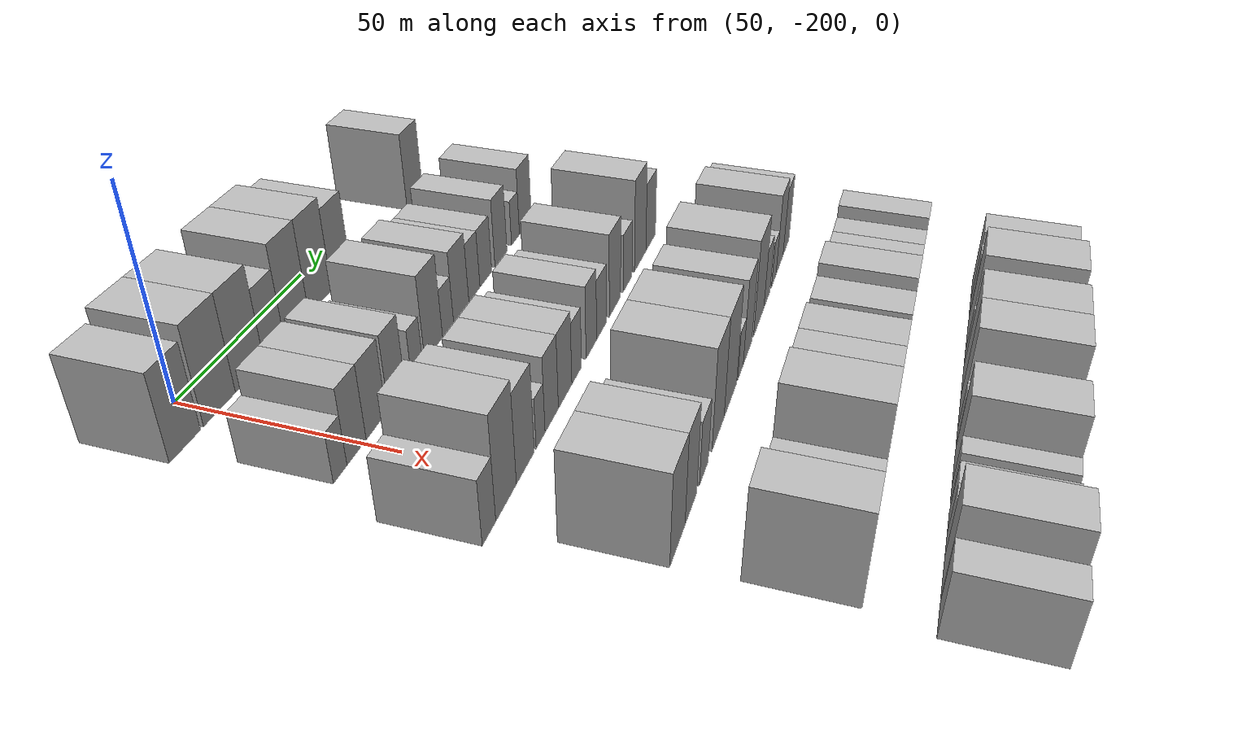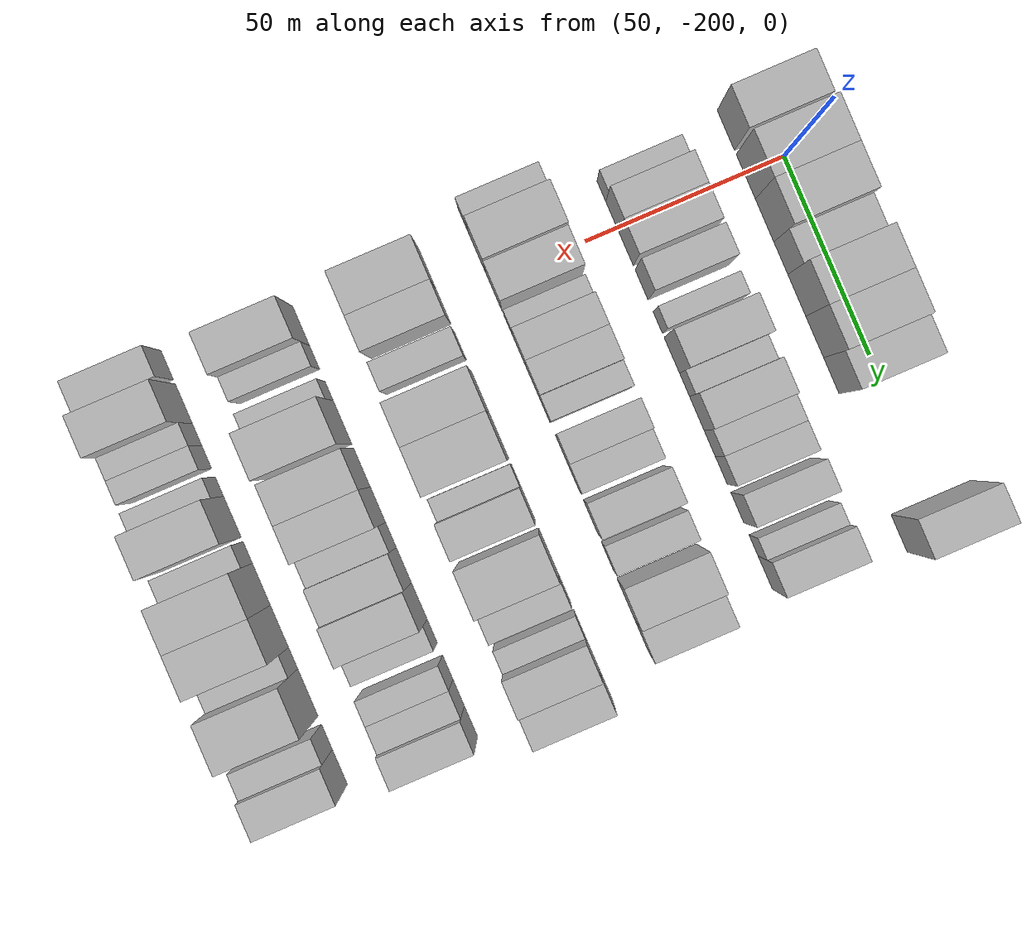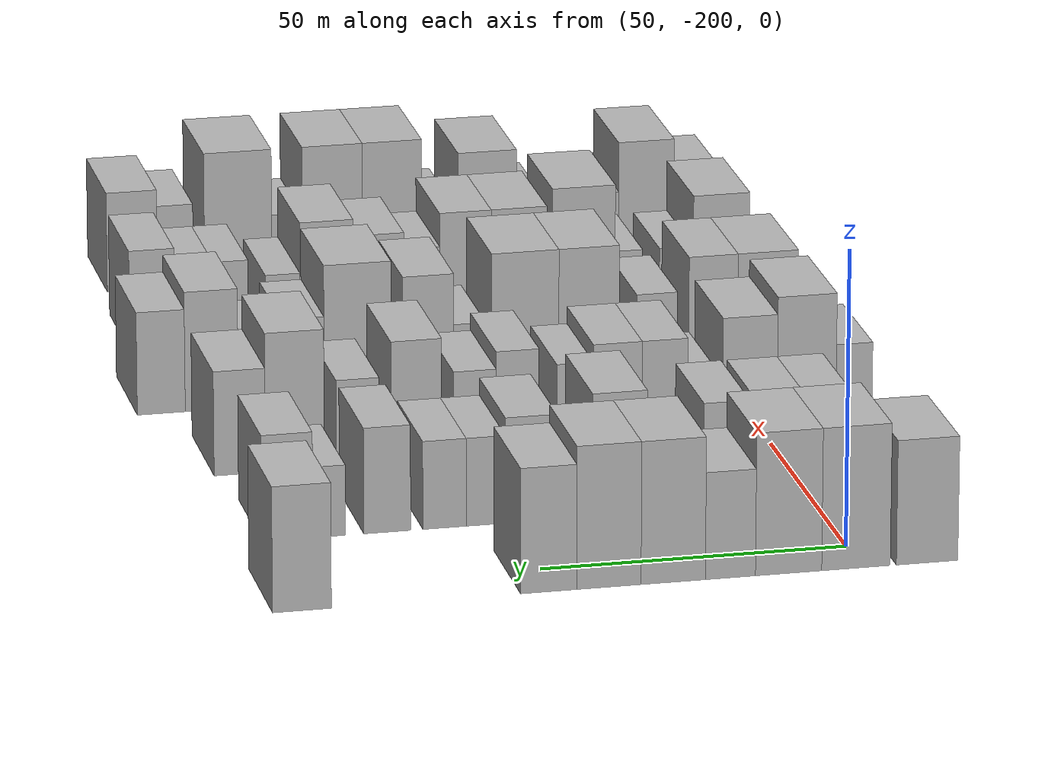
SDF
<sdf version="1.6">
 <world name="default">
  <model name="building_36">
   <static>1</static>
   <pose>50.0000 -210.7638 0 0.000000 0.000000 0.000000</pose>
   <link name="link">
    <pose>0 0 10.50 0 0 0</pose>
    <collision name="collision"><geometry><box><size>20.0000 10.0988 21.0000</size></box></geometry></collision>
    <visual name="visual">
     <cast_shadows>0</cast_shadows>
     <geometry><box><size>20.0000 10.0988 21.0000</size></box></geometry>
     <material>
      <script>
       <uri>model://HANNAS_wall/materials/scripts</uri>
       <uri>model://HANNAS_wall/materials/textures</uri>
       <name>vrc/HANNAS_wall</name>
      </script>
     </material>
    </visual>
   </link>
  </model>
  <model name="building_37">
   <static>1</static>
   <pose>50.0000 -199.0971 0 0.000000 0.000000 0.000000</pose>
   <link name="link">
    <pose>0 0 12.00 0 0 0</pose>
    <collision name="collision"><geometry><box><size>20.0000 11.2346 24.0000</size></box></geometry></collision>
    <visual name="visual">
     <cast_shadows>0</cast_shadows>
     <geometry><box><size>20.0000 11.2346 24.0000</size></box></geometry>
     <material>
      <script>
       <uri>model://HANNAS_wall/materials/scripts</uri>
       <uri>model://HANNAS_wall/materials/textures</uri>
       <name>vrc/HANNAS_wall</name>
      </script>
     </material>
    </visual>
   </link>
  </model>
  <model name="building_38">
   <static>1</static>
   <pose>50.0000 -188.0680 0 0.000000 0.000000 0.000000</pose>
   <link name="link">
    <pose>0 0 12.00 0 0 0</pose>
    <collision name="collision"><geometry><box><size>20.0000 10.8237 24.0000</size></box></geometry></collision>
    <visual name="visual">
     <cast_shadows>0</cast_shadows>
     <geometry><box><size>20.0000 10.8237 24.0000</size></box></geometry>
     <material>
      <script>
       <uri>model://HANNAS_wall/materials/scripts</uri>
       <uri>model://HANNAS_wall/materials/textures</uri>
       <name>vrc/HANNAS_wall</name>
      </script>
     </material>
    </visual>
   </link>
  </model>
  <model name="building_39">
   <static>1</static>
   <pose>50.0000 -178.5790 0 0.000000 0.000000 0.000000</pose>
   <link name="link">
    <pose>0 0 9.00 0 0 0</pose>
    <collision name="collision"><geometry><box><size>20.0000 8.1543 18.0000</size></box></geometry></collision>
    <visual name="visual">
     <cast_shadows>0</cast_shadows>
     <geometry><box><size>20.0000 8.1543 18.0000</size></box></geometry>
     <material>
      <script>
       <uri>model://HANNAS_wall/materials/scripts</uri>
       <uri>model://HANNAS_wall/materials/textures</uri>
       <name>vrc/HANNAS_wall</name>
      </script>
     </material>
    </visual>
   </link>
  </model>
  <model name="building_40">
   <static>1</static>
   <pose>50.0000 -169.2701 0 0.000000 0.000000 0.000000</pose>
   <link name="link">
    <pose>0 0 12.00 0 0 0</pose>
    <collision name="collision"><geometry><box><size>20.0000 10.4635 24.0000</size></box></geometry></collision>
    <visual name="visual">
     <cast_shadows>0</cast_shadows>
     <geometry><box><size>20.0000 10.4635 24.0000</size></box></geometry>
     <material>
      <script>
       <uri>model://HANNAS_wall/materials/scripts</uri>
       <uri>model://HANNAS_wall/materials/textures</uri>
       <name>vrc/HANNAS_wall</name>
      </script>
     </material>
    </visual>
   </link>
  </model>
  <model name="building_41">
   <static>1</static>
   <pose>50.0000 -158.8248 0 0.000000 0.000000 0.000000</pose>
   <link name="link">
    <pose>0 0 12.00 0 0 0</pose>
    <collision name="collision"><geometry><box><size>20.0000 10.4271 24.0000</size></box></geometry></collision>
    <visual name="visual">
     <cast_shadows>0</cast_shadows>
     <geometry><box><size>20.0000 10.4271 24.0000</size></box></geometry>
     <material>
      <script>
       <uri>model://HANNAS_wall/materials/scripts</uri>
       <uri>model://HANNAS_wall/materials/textures</uri>
       <name>vrc/HANNAS_wall</name>
      </script>
     </material>
    </visual>
   </link>
  </model>
  <model name="building_42">
   <static>1</static>
   <pose>50.0000 -149.0748 0 0.000000 0.000000 0.000000</pose>
   <link name="link">
    <pose>0 0 10.50 0 0 0</pose>
    <collision name="collision"><geometry><box><size>20.0000 9.0729 21.0000</size></box></geometry></collision>
    <visual name="visual">
     <cast_shadows>0</cast_shadows>
     <geometry><box><size>20.0000 9.0729 21.0000</size></box></geometry>
     <material>
      <script>
       <uri>model://HANNAS_wall/materials/scripts</uri>
       <uri>model://HANNAS_wall/materials/textures</uri>
       <name>vrc/HANNAS_wall</name>
      </script>
     </material>
    </visual>
   </link>
  </model>
  <model name="building_43">
   <static>1</static>
   <pose>50.0000 -109.4234 0 0.000000 0.000000 0.000000</pose>
   <link name="link">
    <pose>0 0 10.50 0 0 0</pose>
    <collision name="collision"><geometry><box><size>20.0000 9.4100 21.0000</size></box></geometry></collision>
    <visual name="visual">
     <cast_shadows>0</cast_shadows>
     <geometry><box><size>20.0000 9.4100 21.0000</size></box></geometry>
     <material>
      <script>
       <uri>model://HANNAS_wall/materials/scripts</uri>
       <uri>model://HANNAS_wall/materials/textures</uri>
       <name>vrc/HANNAS_wall</name>
      </script>
     </material>
    </visual>
   </link>
  </model>
  <model name="building_156">
   <static>1</static>
   <pose>82.0000 -209.1555 0 0.000000 0.000000 0.000000</pose>
   <link name="link">
    <pose>0 0 6.00 0 0 0</pose>
    <collision name="collision"><geometry><box><size>20.0000 5.2155 12.0000</size></box></geometry></collision>
    <visual name="visual">
     <cast_shadows>0</cast_shadows>
     <geometry><box><size>20.0000 5.2155 12.0000</size></box></geometry>
     <material>
      <script>
       <uri>model://HANNAS_wall/materials/scripts</uri>
       <uri>model://HANNAS_wall/materials/textures</uri>
       <name>vrc/HANNAS_wall</name>
      </script>
     </material>
    </visual>
   </link>
  </model>
  <model name="building_157">
   <static>1</static>
   <pose>82.0000 -202.7087 0 0.000000 0.000000 0.000000</pose>
   <link name="link">
    <pose>0 0 9.00 0 0 0</pose>
    <collision name="collision"><geometry><box><size>20.0000 7.6779 18.0000</size></box></geometry></collision>
    <visual name="visual">
     <cast_shadows>0</cast_shadows>
     <geometry><box><size>20.0000 7.6779 18.0000</size></box></geometry>
     <material>
      <script>
       <uri>model://HANNAS_wall/materials/scripts</uri>
       <uri>model://HANNAS_wall/materials/textures</uri>
       <name>vrc/HANNAS_wall</name>
      </script>
     </material>
    </visual>
   </link>
  </model>
  <model name="building_158">
   <static>1</static>
   <pose>82.0000 -194.6517 0 0.000000 0.000000 0.000000</pose>
   <link name="link">
    <pose>0 0 9.00 0 0 0</pose>
    <collision name="collision"><geometry><box><size>20.0000 8.4361 18.0000</size></box></geometry></collision>
    <visual name="visual">
     <cast_shadows>0</cast_shadows>
     <geometry><box><size>20.0000 8.4361 18.0000</size></box></geometry>
     <material>
      <script>
       <uri>model://HANNAS_wall/materials/scripts</uri>
       <uri>model://HANNAS_wall/materials/textures</uri>
       <name>vrc/HANNAS_wall</name>
      </script>
     </material>
    </visual>
   </link>
  </model>
  <model name="building_159">
   <static>1</static>
   <pose>82.0000 -185.6386 0 0.000000 0.000000 0.000000</pose>
   <link name="link">
    <pose>0 0 9.00 0 0 0</pose>
    <collision name="collision"><geometry><box><size>20.0000 7.5902 18.0000</size></box></geometry></collision>
    <visual name="visual">
     <cast_shadows>0</cast_shadows>
     <geometry><box><size>20.0000 7.5902 18.0000</size></box></geometry>
     <material>
      <script>
       <uri>model://HANNAS_wall/materials/scripts</uri>
       <uri>model://HANNAS_wall/materials/textures</uri>
       <name>vrc/HANNAS_wall</name>
      </script>
     </material>
    </visual>
   </link>
  </model>
  <model name="building_160">
   <static>1</static>
   <pose>82.0000 -176.1401 0 0.000000 0.000000 0.000000</pose>
   <link name="link">
    <pose>0 0 6.00 0 0 0</pose>
    <collision name="collision"><geometry><box><size>20.0000 5.4068 12.0000</size></box></geometry></collision>
    <visual name="visual">
     <cast_shadows>0</cast_shadows>
     <geometry><box><size>20.0000 5.4068 12.0000</size></box></geometry>
     <material>
      <script>
       <uri>model://HANNAS_wall/materials/scripts</uri>
       <uri>model://HANNAS_wall/materials/textures</uri>
       <name>vrc/HANNAS_wall</name>
      </script>
     </material>
    </visual>
   </link>
  </model>
  <model name="building_161">
   <static>1</static>
   <pose>82.0000 -167.9277 0 0.000000 0.000000 0.000000</pose>
   <link name="link">
    <pose>0 0 10.50 0 0 0</pose>
    <collision name="collision"><geometry><box><size>20.0000 9.0180 21.0000</size></box></geometry></collision>
    <visual name="visual">
     <cast_shadows>0</cast_shadows>
     <geometry><box><size>20.0000 9.0180 21.0000</size></box></geometry>
     <material>
      <script>
       <uri>model://HANNAS_wall/materials/scripts</uri>
       <uri>model://HANNAS_wall/materials/textures</uri>
       <name>vrc/HANNAS_wall</name>
      </script>
     </material>
    </visual>
   </link>
  </model>
  <model name="building_162">
   <static>1</static>
   <pose>82.0000 -160.4993 0 0.000000 0.000000 0.000000</pose>
   <link name="link">
    <pose>0 0 6.00 0 0 0</pose>
    <collision name="collision"><geometry><box><size>20.0000 5.8388 12.0000</size></box></geometry></collision>
    <visual name="visual">
     <cast_shadows>0</cast_shadows>
     <geometry><box><size>20.0000 5.8388 12.0000</size></box></geometry>
     <material>
      <script>
       <uri>model://HANNAS_wall/materials/scripts</uri>
       <uri>model://HANNAS_wall/materials/textures</uri>
       <name>vrc/HANNAS_wall</name>
      </script>
     </material>
    </visual>
   </link>
  </model>
  <model name="building_163">
   <static>1</static>
   <pose>82.0000 -153.3152 0 0.000000 0.000000 0.000000</pose>
   <link name="link">
    <pose>0 0 9.00 0 0 0</pose>
    <collision name="collision"><geometry><box><size>20.0000 8.5295 18.0000</size></box></geometry></collision>
    <visual name="visual">
     <cast_shadows>0</cast_shadows>
     <geometry><box><size>20.0000 8.5295 18.0000</size></box></geometry>
     <material>
      <script>
       <uri>model://HANNAS_wall/materials/scripts</uri>
       <uri>model://HANNAS_wall/materials/textures</uri>
       <name>vrc/HANNAS_wall</name>
      </script>
     </material>
    </visual>
   </link>
  </model>
  <model name="building_164">
   <static>1</static>
   <pose>82.0000 -145.8263 0 0.000000 0.000000 0.000000</pose>
   <link name="link">
    <pose>0 0 7.50 0 0 0</pose>
    <collision name="collision"><geometry><box><size>20.0000 6.4483 15.0000</size></box></geometry></collision>
    <visual name="visual">
     <cast_shadows>0</cast_shadows>
     <geometry><box><size>20.0000 6.4483 15.0000</size></box></geometry>
     <material>
      <script>
       <uri>model://HANNAS_wall/materials/scripts</uri>
       <uri>model://HANNAS_wall/materials/textures</uri>
       <name>vrc/HANNAS_wall</name>
      </script>
     </material>
    </visual>
   </link>
  </model>
  <model name="building_165">
   <static>1</static>
   <pose>82.0000 -139.0373 0 0.000000 0.000000 0.000000</pose>
   <link name="link">
    <pose>0 0 7.50 0 0 0</pose>
    <collision name="collision"><geometry><box><size>20.0000 7.1297 15.0000</size></box></geometry></collision>
    <visual name="visual">
     <cast_shadows>0</cast_shadows>
     <geometry><box><size>20.0000 7.1297 15.0000</size></box></geometry>
     <material>
      <script>
       <uri>model://HANNAS_wall/materials/scripts</uri>
       <uri>model://HANNAS_wall/materials/textures</uri>
       <name>vrc/HANNAS_wall</name>
      </script>
     </material>
    </visual>
   </link>
  </model>
  <model name="building_166">
   <static>1</static>
   <pose>82.0000 -129.6316 0 0.000000 0.000000 0.000000</pose>
   <link name="link">
    <pose>0 0 9.00 0 0 0</pose>
    <collision name="collision"><geometry><box><size>20.0000 7.6817 18.0000</size></box></geometry></collision>
    <visual name="visual">
     <cast_shadows>0</cast_shadows>
     <geometry><box><size>20.0000 7.6817 18.0000</size></box></geometry>
     <material>
      <script>
       <uri>model://HANNAS_wall/materials/scripts</uri>
       <uri>model://HANNAS_wall/materials/textures</uri>
       <name>vrc/HANNAS_wall</name>
      </script>
     </material>
    </visual>
   </link>
  </model>
  <model name="building_167">
   <static>1</static>
   <pose>82.0000 -120.1277 0 0.000000 0.000000 0.000000</pose>
   <link name="link">
    <pose>0 0 6.00 0 0 0</pose>
    <collision name="collision"><geometry><box><size>20.0000 5.3262 12.0000</size></box></geometry></collision>
    <visual name="visual">
     <cast_shadows>0</cast_shadows>
     <geometry><box><size>20.0000 5.3262 12.0000</size></box></geometry>
     <material>
      <script>
       <uri>model://HANNAS_wall/materials/scripts</uri>
       <uri>model://HANNAS_wall/materials/textures</uri>
       <name>vrc/HANNAS_wall</name>
      </script>
     </material>
    </visual>
   </link>
  </model>
  <model name="building_168">
   <static>1</static>
   <pose>82.0000 -113.2924 0 0.000000 0.000000 0.000000</pose>
   <link name="link">
    <pose>0 0 9.00 0 0 0</pose>
    <collision name="collision"><geometry><box><size>20.0000 8.3443 18.0000</size></box></geometry></collision>
    <visual name="visual">
     <cast_shadows>0</cast_shadows>
     <geometry><box><size>20.0000 8.3443 18.0000</size></box></geometry>
     <material>
      <script>
       <uri>model://HANNAS_wall/materials/scripts</uri>
       <uri>model://HANNAS_wall/materials/textures</uri>
       <name>vrc/HANNAS_wall</name>
      </script>
     </material>
    </visual>
   </link>
  </model>
  <model name="building_278">
   <static>1</static>
   <pose>114.0000 -215.1115 0 0.000000 0.000000 0.000000</pose>
   <link name="link">
    <pose>0 0 7.50 0 0 0</pose>
    <collision name="collision"><geometry><box><size>20.0000 6.1812 15.0000</size></box></geometry></collision>
    <visual name="visual">
     <cast_shadows>0</cast_shadows>
     <geometry><box><size>20.0000 6.1812 15.0000</size></box></geometry>
     <material>
      <script>
       <uri>model://HANNAS_wall/materials/scripts</uri>
       <uri>model://HANNAS_wall/materials/textures</uri>
       <name>vrc/HANNAS_wall</name>
      </script>
     </material>
    </visual>
   </link>
  </model>
  <model name="building_279">
   <static>1</static>
   <pose>114.0000 -207.0166 0 0.000000 0.000000 0.000000</pose>
   <link name="link">
    <pose>0 0 12.00 0 0 0</pose>
    <collision name="collision"><geometry><box><size>20.0000 10.0087 24.0000</size></box></geometry></collision>
    <visual name="visual">
     <cast_shadows>0</cast_shadows>
     <geometry><box><size>20.0000 10.0087 24.0000</size></box></geometry>
     <material>
      <script>
       <uri>model://HANNAS_wall/materials/scripts</uri>
       <uri>model://HANNAS_wall/materials/textures</uri>
       <name>vrc/HANNAS_wall</name>
      </script>
     </material>
    </visual>
   </link>
  </model>
  <model name="building_280">
   <static>1</static>
   <pose>114.0000 -197.3719 0 0.000000 0.000000 0.000000</pose>
   <link name="link">
    <pose>0 0 10.50 0 0 0</pose>
    <collision name="collision"><geometry><box><size>20.0000 9.2807 21.0000</size></box></geometry></collision>
    <visual name="visual">
     <cast_shadows>0</cast_shadows>
     <geometry><box><size>20.0000 9.2807 21.0000</size></box></geometry>
     <material>
      <script>
       <uri>model://HANNAS_wall/materials/scripts</uri>
       <uri>model://HANNAS_wall/materials/textures</uri>
       <name>vrc/HANNAS_wall</name>
      </script>
     </material>
    </visual>
   </link>
  </model>
  <model name="building_281">
   <static>1</static>
   <pose>114.0000 -189.2572 0 0.000000 0.000000 0.000000</pose>
   <link name="link">
    <pose>0 0 6.00 0 0 0</pose>
    <collision name="collision"><geometry><box><size>20.0000 4.9486 12.0000</size></box></geometry></collision>
    <visual name="visual">
     <cast_shadows>0</cast_shadows>
     <geometry><box><size>20.0000 4.9486 12.0000</size></box></geometry>
     <material>
      <script>
       <uri>model://HANNAS_wall/materials/scripts</uri>
       <uri>model://HANNAS_wall/materials/textures</uri>
       <name>vrc/HANNAS_wall</name>
      </script>
     </material>
    </visual>
   </link>
  </model>
  <model name="building_282">
   <static>1</static>
   <pose>114.0000 -182.9211 0 0.000000 0.000000 0.000000</pose>
   <link name="link">
    <pose>0 0 9.00 0 0 0</pose>
    <collision name="collision"><geometry><box><size>20.0000 7.7236 18.0000</size></box></geometry></collision>
    <visual name="visual">
     <cast_shadows>0</cast_shadows>
     <geometry><box><size>20.0000 7.7236 18.0000</size></box></geometry>
     <material>
      <script>
       <uri>model://HANNAS_wall/materials/scripts</uri>
       <uri>model://HANNAS_wall/materials/textures</uri>
       <name>vrc/HANNAS_wall</name>
      </script>
     </material>
    </visual>
   </link>
  </model>
  <model name="building_283">
   <static>1</static>
   <pose>114.0000 -174.9520 0 0.000000 0.000000 0.000000</pose>
   <link name="link">
    <pose>0 0 9.00 0 0 0</pose>
    <collision name="collision"><geometry><box><size>20.0000 8.2147 18.0000</size></box></geometry></collision>
    <visual name="visual">
     <cast_shadows>0</cast_shadows>
     <geometry><box><size>20.0000 8.2147 18.0000</size></box></geometry>
     <material>
      <script>
       <uri>model://HANNAS_wall/materials/scripts</uri>
       <uri>model://HANNAS_wall/materials/textures</uri>
       <name>vrc/HANNAS_wall</name>
      </script>
     </material>
    </visual>
   </link>
  </model>
  <model name="building_284">
   <static>1</static>
   <pose>114.0000 -167.7621 0 0.000000 0.000000 0.000000</pose>
   <link name="link">
    <pose>0 0 7.50 0 0 0</pose>
    <collision name="collision"><geometry><box><size>20.0000 6.1651 15.0000</size></box></geometry></collision>
    <visual name="visual">
     <cast_shadows>0</cast_shadows>
     <geometry><box><size>20.0000 6.1651 15.0000</size></box></geometry>
     <material>
      <script>
       <uri>model://HANNAS_wall/materials/scripts</uri>
       <uri>model://HANNAS_wall/materials/textures</uri>
       <name>vrc/HANNAS_wall</name>
      </script>
     </material>
    </visual>
   </link>
  </model>
  <model name="building_285">
   <static>1</static>
   <pose>114.0000 -158.0677 0 0.000000 0.000000 0.000000</pose>
   <link name="link">
    <pose>0 0 9.00 0 0 0</pose>
    <collision name="collision"><geometry><box><size>20.0000 7.2236 18.0000</size></box></geometry></collision>
    <visual name="visual">
     <cast_shadows>0</cast_shadows>
     <geometry><box><size>20.0000 7.2236 18.0000</size></box></geometry>
     <material>
      <script>
       <uri>model://HANNAS_wall/materials/scripts</uri>
       <uri>model://HANNAS_wall/materials/textures</uri>
       <name>vrc/HANNAS_wall</name>
      </script>
     </material>
    </visual>
   </link>
  </model>
  <model name="building_286">
   <static>1</static>
   <pose>114.0000 -150.8961 0 0.000000 0.000000 0.000000</pose>
   <link name="link">
    <pose>0 0 7.50 0 0 0</pose>
    <collision name="collision"><geometry><box><size>20.0000 7.1198 15.0000</size></box></geometry></collision>
    <visual name="visual">
     <cast_shadows>0</cast_shadows>
     <geometry><box><size>20.0000 7.1198 15.0000</size></box></geometry>
     <material>
      <script>
       <uri>model://HANNAS_wall/materials/scripts</uri>
       <uri>model://HANNAS_wall/materials/textures</uri>
       <name>vrc/HANNAS_wall</name>
      </script>
     </material>
    </visual>
   </link>
  </model>
  <model name="building_287">
   <static>1</static>
   <pose>114.0000 -141.0947 0 0.000000 0.000000 0.000000</pose>
   <link name="link">
    <pose>0 0 10.50 0 0 0</pose>
    <collision name="collision"><geometry><box><size>20.0000 8.4828 21.0000</size></box></geometry></collision>
    <visual name="visual">
     <cast_shadows>0</cast_shadows>
     <geometry><box><size>20.0000 8.4828 21.0000</size></box></geometry>
     <material>
      <script>
       <uri>model://HANNAS_wall/materials/scripts</uri>
       <uri>model://HANNAS_wall/materials/textures</uri>
       <name>vrc/HANNAS_wall</name>
      </script>
     </material>
    </visual>
   </link>
  </model>
  <model name="building_288">
   <static>1</static>
   <pose>114.0000 -131.2701 0 0.000000 0.000000 0.000000</pose>
   <link name="link">
    <pose>0 0 7.50 0 0 0</pose>
    <collision name="collision"><geometry><box><size>20.0000 7.1664 15.0000</size></box></geometry></collision>
    <visual name="visual">
     <cast_shadows>0</cast_shadows>
     <geometry><box><size>20.0000 7.1664 15.0000</size></box></geometry>
     <material>
      <script>
       <uri>model://HANNAS_wall/materials/scripts</uri>
       <uri>model://HANNAS_wall/materials/textures</uri>
       <name>vrc/HANNAS_wall</name>
      </script>
     </material>
    </visual>
   </link>
  </model>
  <model name="building_289">
   <static>1</static>
   <pose>114.0000 -120.7771 0 0.000000 0.000000 0.000000</pose>
   <link name="link">
    <pose>0 0 12.00 0 0 0</pose>
    <collision name="collision"><geometry><box><size>20.0000 9.8196 24.0000</size></box></geometry></collision>
    <visual name="visual">
     <cast_shadows>0</cast_shadows>
     <geometry><box><size>20.0000 9.8196 24.0000</size></box></geometry>
     <material>
      <script>
       <uri>model://HANNAS_wall/materials/scripts</uri>
       <uri>model://HANNAS_wall/materials/textures</uri>
       <name>vrc/HANNAS_wall</name>
      </script>
     </material>
    </visual>
   </link>
  </model>
  <model name="building_290">
   <static>1</static>
   <pose>114.0000 -111.5924 0 0.000000 0.000000 0.000000</pose>
   <link name="link">
    <pose>0 0 9.00 0 0 0</pose>
    <collision name="collision"><geometry><box><size>20.0000 8.5498 18.0000</size></box></geometry></collision>
    <visual name="visual">
     <cast_shadows>0</cast_shadows>
     <geometry><box><size>20.0000 8.5498 18.0000</size></box></geometry>
     <material>
      <script>
       <uri>model://HANNAS_wall/materials/scripts</uri>
       <uri>model://HANNAS_wall/materials/textures</uri>
       <name>vrc/HANNAS_wall</name>
      </script>
     </material>
    </visual>
   </link>
  </model>
  <model name="building_399">
   <static>1</static>
   <pose>146.0000 -208.2843 0 0.000000 0.000000 0.000000</pose>
   <link name="link">
    <pose>0 0 10.50 0 0 0</pose>
    <collision name="collision"><geometry><box><size>20.0000 10.4427 21.0000</size></box></geometry></collision>
    <visual name="visual">
     <cast_shadows>0</cast_shadows>
     <geometry><box><size>20.0000 10.4427 21.0000</size></box></geometry>
     <material>
      <script>
       <uri>model://HANNAS_wall/materials/scripts</uri>
       <uri>model://HANNAS_wall/materials/textures</uri>
       <name>vrc/HANNAS_wall</name>
      </script>
     </material>
    </visual>
   </link>
  </model>
  <model name="building_400">
   <static>1</static>
   <pose>146.0000 -198.8221 0 0.000000 0.000000 0.000000</pose>
   <link name="link">
    <pose>0 0 10.50 0 0 0</pose>
    <collision name="collision"><geometry><box><size>20.0000 8.4816 21.0000</size></box></geometry></collision>
    <visual name="visual">
     <cast_shadows>0</cast_shadows>
     <geometry><box><size>20.0000 8.4816 21.0000</size></box></geometry>
     <material>
      <script>
       <uri>model://HANNAS_wall/materials/scripts</uri>
       <uri>model://HANNAS_wall/materials/textures</uri>
       <name>vrc/HANNAS_wall</name>
      </script>
     </material>
    </visual>
   </link>
  </model>
  <model name="building_401">
   <static>1</static>
   <pose>146.0000 -189.0805 0 0.000000 0.000000 0.000000</pose>
   <link name="link">
    <pose>0 0 7.50 0 0 0</pose>
    <collision name="collision"><geometry><box><size>20.0000 7.0016 15.0000</size></box></geometry></collision>
    <visual name="visual">
     <cast_shadows>0</cast_shadows>
     <geometry><box><size>20.0000 7.0016 15.0000</size></box></geometry>
     <material>
      <script>
       <uri>model://HANNAS_wall/materials/scripts</uri>
       <uri>model://HANNAS_wall/materials/textures</uri>
       <name>vrc/HANNAS_wall</name>
      </script>
     </material>
    </visual>
   </link>
  </model>
  <model name="building_402">
   <static>1</static>
   <pose>146.0000 -177.3734 0 0.000000 0.000000 0.000000</pose>
   <link name="link">
    <pose>0 0 12.00 0 0 0</pose>
    <collision name="collision"><geometry><box><size>20.0000 10.4127 24.0000</size></box></geometry></collision>
    <visual name="visual">
     <cast_shadows>0</cast_shadows>
     <geometry><box><size>20.0000 10.4127 24.0000</size></box></geometry>
     <material>
      <script>
       <uri>model://HANNAS_wall/materials/scripts</uri>
       <uri>model://HANNAS_wall/materials/textures</uri>
       <name>vrc/HANNAS_wall</name>
      </script>
     </material>
    </visual>
   </link>
  </model>
  <model name="building_403">
   <static>1</static>
   <pose>146.0000 -166.4023 0 0.000000 0.000000 0.000000</pose>
   <link name="link">
    <pose>0 0 12.00 0 0 0</pose>
    <collision name="collision"><geometry><box><size>20.0000 11.5294 24.0000</size></box></geometry></collision>
    <visual name="visual">
     <cast_shadows>0</cast_shadows>
     <geometry><box><size>20.0000 11.5294 24.0000</size></box></geometry>
     <material>
      <script>
       <uri>model://HANNAS_wall/materials/scripts</uri>
       <uri>model://HANNAS_wall/materials/textures</uri>
       <name>vrc/HANNAS_wall</name>
      </script>
     </material>
    </visual>
   </link>
  </model>
  <model name="building_404">
   <static>1</static>
   <pose>146.0000 -156.8957 0 0.000000 0.000000 0.000000</pose>
   <link name="link">
    <pose>0 0 6.00 0 0 0</pose>
    <collision name="collision"><geometry><box><size>20.0000 5.4838 12.0000</size></box></geometry></collision>
    <visual name="visual">
     <cast_shadows>0</cast_shadows>
     <geometry><box><size>20.0000 5.4838 12.0000</size></box></geometry>
     <material>
      <script>
       <uri>model://HANNAS_wall/materials/scripts</uri>
       <uri>model://HANNAS_wall/materials/textures</uri>
       <name>vrc/HANNAS_wall</name>
      </script>
     </material>
    </visual>
   </link>
  </model>
  <model name="building_405">
   <static>1</static>
   <pose>146.0000 -149.7955 0 0.000000 0.000000 0.000000</pose>
   <link name="link">
    <pose>0 0 10.50 0 0 0</pose>
    <collision name="collision"><geometry><box><size>20.0000 8.7166 21.0000</size></box></geometry></collision>
    <visual name="visual">
     <cast_shadows>0</cast_shadows>
     <geometry><box><size>20.0000 8.7166 21.0000</size></box></geometry>
     <material>
      <script>
       <uri>model://HANNAS_wall/materials/scripts</uri>
       <uri>model://HANNAS_wall/materials/textures</uri>
       <name>vrc/HANNAS_wall</name>
      </script>
     </material>
    </visual>
   </link>
  </model>
  <model name="building_406">
   <static>1</static>
   <pose>146.0000 -137.7235 0 0.000000 0.000000 0.000000</pose>
   <link name="link">
    <pose>0 0 12.00 0 0 0</pose>
    <collision name="collision"><geometry><box><size>20.0000 11.4274 24.0000</size></box></geometry></collision>
    <visual name="visual">
     <cast_shadows>0</cast_shadows>
     <geometry><box><size>20.0000 11.4274 24.0000</size></box></geometry>
     <material>
      <script>
       <uri>model://HANNAS_wall/materials/scripts</uri>
       <uri>model://HANNAS_wall/materials/textures</uri>
       <name>vrc/HANNAS_wall</name>
      </script>
     </material>
    </visual>
   </link>
  </model>
  <model name="building_407">
   <static>1</static>
   <pose>146.0000 -128.4675 0 0.000000 0.000000 0.000000</pose>
   <link name="link">
    <pose>0 0 7.50 0 0 0</pose>
    <collision name="collision"><geometry><box><size>20.0000 7.0846 15.0000</size></box></geometry></collision>
    <visual name="visual">
     <cast_shadows>0</cast_shadows>
     <geometry><box><size>20.0000 7.0846 15.0000</size></box></geometry>
     <material>
      <script>
       <uri>model://HANNAS_wall/materials/scripts</uri>
       <uri>model://HANNAS_wall/materials/textures</uri>
       <name>vrc/HANNAS_wall</name>
      </script>
     </material>
    </visual>
   </link>
  </model>
  <model name="building_408">
   <static>1</static>
   <pose>146.0000 -120.1508 0 0.000000 0.000000 0.000000</pose>
   <link name="link">
    <pose>0 0 6.00 0 0 0</pose>
    <collision name="collision"><geometry><box><size>20.0000 5.5487 12.0000</size></box></geometry></collision>
    <visual name="visual">
     <cast_shadows>0</cast_shadows>
     <geometry><box><size>20.0000 5.5487 12.0000</size></box></geometry>
     <material>
      <script>
       <uri>model://HANNAS_wall/materials/scripts</uri>
       <uri>model://HANNAS_wall/materials/textures</uri>
       <name>vrc/HANNAS_wall</name>
      </script>
     </material>
    </visual>
   </link>
  </model>
  <model name="building_409">
   <static>1</static>
   <pose>146.0000 -112.8753 0 0.000000 0.000000 0.000000</pose>
   <link name="link">
    <pose>0 0 10.50 0 0 0</pose>
    <collision name="collision"><geometry><box><size>20.0000 9.0022 21.0000</size></box></geometry></collision>
    <visual name="visual">
     <cast_shadows>0</cast_shadows>
     <geometry><box><size>20.0000 9.0022 21.0000</size></box></geometry>
     <material>
      <script>
       <uri>model://HANNAS_wall/materials/scripts</uri>
       <uri>model://HANNAS_wall/materials/textures</uri>
       <name>vrc/HANNAS_wall</name>
      </script>
     </material>
    </visual>
   </link>
  </model>
  <model name="building_410">
   <static>1</static>
   <pose>146.0000 -104.3147 0 0.000000 0.000000 0.000000</pose>
   <link name="link">
    <pose>0 0 9.00 0 0 0</pose>
    <collision name="collision"><geometry><box><size>20.0000 8.1191 18.0000</size></box></geometry></collision>
    <visual name="visual">
     <cast_shadows>0</cast_shadows>
     <geometry><box><size>20.0000 8.1191 18.0000</size></box></geometry>
     <material>
      <script>
       <uri>model://HANNAS_wall/materials/scripts</uri>
       <uri>model://HANNAS_wall/materials/textures</uri>
       <name>vrc/HANNAS_wall</name>
      </script>
     </material>
    </visual>
   </link>
  </model>
  <model name="building_518">
   <static>1</static>
   <pose>178.0000 -207.9516 0 0.000000 0.000000 0.000000</pose>
   <link name="link">
    <pose>0 0 10.50 0 0 0</pose>
    <collision name="collision"><geometry><box><size>20.0000 9.9208 21.0000</size></box></geometry></collision>
    <visual name="visual">
     <cast_shadows>0</cast_shadows>
     <geometry><box><size>20.0000 9.9208 21.0000</size></box></geometry>
     <material>
      <script>
       <uri>model://HANNAS_wall/materials/scripts</uri>
       <uri>model://HANNAS_wall/materials/textures</uri>
       <name>vrc/HANNAS_wall</name>
      </script>
     </material>
    </visual>
   </link>
  </model>
  <model name="building_519">
   <static>1</static>
   <pose>178.0000 -200.0055 0 0.000000 0.000000 0.000000</pose>
   <link name="link">
    <pose>0 0 6.00 0 0 0</pose>
    <collision name="collision"><geometry><box><size>20.0000 5.9713 12.0000</size></box></geometry></collision>
    <visual name="visual">
     <cast_shadows>0</cast_shadows>
     <geometry><box><size>20.0000 5.9713 12.0000</size></box></geometry>
     <material>
      <script>
       <uri>model://HANNAS_wall/materials/scripts</uri>
       <uri>model://HANNAS_wall/materials/textures</uri>
       <name>vrc/HANNAS_wall</name>
      </script>
     </material>
    </visual>
   </link>
  </model>
  <model name="building_520">
   <static>1</static>
   <pose>178.0000 -191.6106 0 0.000000 0.000000 0.000000</pose>
   <link name="link">
    <pose>0 0 6.00 0 0 0</pose>
    <collision name="collision"><geometry><box><size>20.0000 4.8186 12.0000</size></box></geometry></collision>
    <visual name="visual">
     <cast_shadows>0</cast_shadows>
     <geometry><box><size>20.0000 4.8186 12.0000</size></box></geometry>
     <material>
      <script>
       <uri>model://HANNAS_wall/materials/scripts</uri>
       <uri>model://HANNAS_wall/materials/textures</uri>
       <name>vrc/HANNAS_wall</name>
      </script>
     </material>
    </visual>
   </link>
  </model>
  <model name="building_521">
   <static>1</static>
   <pose>178.0000 -183.6946 0 0.000000 0.000000 0.000000</pose>
   <link name="link">
    <pose>0 0 12.00 0 0 0</pose>
    <collision name="collision"><geometry><box><size>20.0000 11.0135 24.0000</size></box></geometry></collision>
    <visual name="visual">
     <cast_shadows>0</cast_shadows>
     <geometry><box><size>20.0000 11.0135 24.0000</size></box></geometry>
     <material>
      <script>
       <uri>model://HANNAS_wall/materials/scripts</uri>
       <uri>model://HANNAS_wall/materials/textures</uri>
       <name>vrc/HANNAS_wall</name>
      </script>
     </material>
    </visual>
   </link>
  </model>
  <model name="building_522">
   <static>1</static>
   <pose>178.0000 -172.3361 0 0.000000 0.000000 0.000000</pose>
   <link name="link">
    <pose>0 0 10.50 0 0 0</pose>
    <collision name="collision"><geometry><box><size>20.0000 9.7035 21.0000</size></box></geometry></collision>
    <visual name="visual">
     <cast_shadows>0</cast_shadows>
     <geometry><box><size>20.0000 9.7035 21.0000</size></box></geometry>
     <material>
      <script>
       <uri>model://HANNAS_wall/materials/scripts</uri>
       <uri>model://HANNAS_wall/materials/textures</uri>
       <name>vrc/HANNAS_wall</name>
      </script>
     </material>
    </visual>
   </link>
  </model>
  <model name="building_523">
   <static>1</static>
   <pose>178.0000 -162.9885 0 0.000000 0.000000 0.000000</pose>
   <link name="link">
    <pose>0 0 10.50 0 0 0</pose>
    <collision name="collision"><geometry><box><size>20.0000 8.9917 21.0000</size></box></geometry></collision>
    <visual name="visual">
     <cast_shadows>0</cast_shadows>
     <geometry><box><size>20.0000 8.9917 21.0000</size></box></geometry>
     <material>
      <script>
       <uri>model://HANNAS_wall/materials/scripts</uri>
       <uri>model://HANNAS_wall/materials/textures</uri>
       <name>vrc/HANNAS_wall</name>
      </script>
     </material>
    </visual>
   </link>
  </model>
  <model name="building_524">
   <static>1</static>
   <pose>178.0000 -155.3636 0 0.000000 0.000000 0.000000</pose>
   <link name="link">
    <pose>0 0 7.50 0 0 0</pose>
    <collision name="collision"><geometry><box><size>20.0000 6.2580 15.0000</size></box></geometry></collision>
    <visual name="visual">
     <cast_shadows>0</cast_shadows>
     <geometry><box><size>20.0000 6.2580 15.0000</size></box></geometry>
     <material>
      <script>
       <uri>model://HANNAS_wall/materials/scripts</uri>
       <uri>model://HANNAS_wall/materials/textures</uri>
       <name>vrc/HANNAS_wall</name>
      </script>
     </material>
    </visual>
   </link>
  </model>
  <model name="building_525">
   <static>1</static>
   <pose>178.0000 -147.8250 0 0.000000 0.000000 0.000000</pose>
   <link name="link">
    <pose>0 0 9.00 0 0 0</pose>
    <collision name="collision"><geometry><box><size>20.0000 8.8193 18.0000</size></box></geometry></collision>
    <visual name="visual">
     <cast_shadows>0</cast_shadows>
     <geometry><box><size>20.0000 8.8193 18.0000</size></box></geometry>
     <material>
      <script>
       <uri>model://HANNAS_wall/materials/scripts</uri>
       <uri>model://HANNAS_wall/materials/textures</uri>
       <name>vrc/HANNAS_wall</name>
      </script>
     </material>
    </visual>
   </link>
  </model>
  <model name="building_526">
   <static>1</static>
   <pose>178.0000 -138.7937 0 0.000000 0.000000 0.000000</pose>
   <link name="link">
    <pose>0 0 10.50 0 0 0</pose>
    <collision name="collision"><geometry><box><size>20.0000 9.2432 21.0000</size></box></geometry></collision>
    <visual name="visual">
     <cast_shadows>0</cast_shadows>
     <geometry><box><size>20.0000 9.2432 21.0000</size></box></geometry>
     <material>
      <script>
       <uri>model://HANNAS_wall/materials/scripts</uri>
       <uri>model://HANNAS_wall/materials/textures</uri>
       <name>vrc/HANNAS_wall</name>
      </script>
     </material>
    </visual>
   </link>
  </model>
  <model name="building_527">
   <static>1</static>
   <pose>178.0000 -131.1813 0 0.000000 0.000000 0.000000</pose>
   <link name="link">
    <pose>0 0 6.00 0 0 0</pose>
    <collision name="collision"><geometry><box><size>20.0000 5.9816 12.0000</size></box></geometry></collision>
    <visual name="visual">
     <cast_shadows>0</cast_shadows>
     <geometry><box><size>20.0000 5.9816 12.0000</size></box></geometry>
     <material>
      <script>
       <uri>model://HANNAS_wall/materials/scripts</uri>
       <uri>model://HANNAS_wall/materials/textures</uri>
       <name>vrc/HANNAS_wall</name>
      </script>
     </material>
    </visual>
   </link>
  </model>
  <model name="building_528">
   <static>1</static>
   <pose>178.0000 -122.1727 0 0.000000 0.000000 0.000000</pose>
   <link name="link">
    <pose>0 0 7.50 0 0 0</pose>
    <collision name="collision"><geometry><box><size>20.0000 6.0356 15.0000</size></box></geometry></collision>
    <visual name="visual">
     <cast_shadows>0</cast_shadows>
     <geometry><box><size>20.0000 6.0356 15.0000</size></box></geometry>
     <material>
      <script>
       <uri>model://HANNAS_wall/materials/scripts</uri>
       <uri>model://HANNAS_wall/materials/textures</uri>
       <name>vrc/HANNAS_wall</name>
      </script>
     </material>
    </visual>
   </link>
  </model>
  <model name="building_529">
   <static>1</static>
   <pose>178.0000 -115.8050 0 0.000000 0.000000 0.000000</pose>
   <link name="link">
    <pose>0 0 7.50 0 0 0</pose>
    <collision name="collision"><geometry><box><size>20.0000 6.6997 15.0000</size></box></geometry></collision>
    <visual name="visual">
     <cast_shadows>0</cast_shadows>
     <geometry><box><size>20.0000 6.6997 15.0000</size></box></geometry>
     <material>
      <script>
       <uri>model://HANNAS_wall/materials/scripts</uri>
       <uri>model://HANNAS_wall/materials/textures</uri>
       <name>vrc/HANNAS_wall</name>
      </script>
     </material>
    </visual>
   </link>
  </model>
  <model name="building_530">
   <static>1</static>
   <pose>178.0000 -108.5647 0 0.000000 0.000000 0.000000</pose>
   <link name="link">
    <pose>0 0 9.00 0 0 0</pose>
    <collision name="collision"><geometry><box><size>20.0000 7.7809 18.0000</size></box></geometry></collision>
    <visual name="visual">
     <cast_shadows>0</cast_shadows>
     <geometry><box><size>20.0000 7.7809 18.0000</size></box></geometry>
     <material>
      <script>
       <uri>model://HANNAS_wall/materials/scripts</uri>
       <uri>model://HANNAS_wall/materials/textures</uri>
       <name>vrc/HANNAS_wall</name>
      </script>
     </material>
    </visual>
   </link>
  </model>
  <model name="building_638">
   <static>1</static>
   <pose>210.0000 -211.8363 0 0.000000 0.000000 0.000000</pose>
   <link name="link">
    <pose>0 0 7.50 0 0 0</pose>
    <collision name="collision"><geometry><box><size>20.0000 7.4365 15.0000</size></box></geometry></collision>
    <visual name="visual">
     <cast_shadows>0</cast_shadows>
     <geometry><box><size>20.0000 7.4365 15.0000</size></box></geometry>
     <material>
      <script>
       <uri>model://HANNAS_wall/materials/scripts</uri>
       <uri>model://HANNAS_wall/materials/textures</uri>
       <name>vrc/HANNAS_wall</name>
      </script>
     </material>
    </visual>
   </link>
  </model>
  <model name="building_639">
   <static>1</static>
   <pose>210.0000 -202.1436 0 0.000000 0.000000 0.000000</pose>
   <link name="link">
    <pose>0 0 10.50 0 0 0</pose>
    <collision name="collision"><geometry><box><size>20.0000 9.9488 21.0000</size></box></geometry></collision>
    <visual name="visual">
     <cast_shadows>0</cast_shadows>
     <geometry><box><size>20.0000 9.9488 21.0000</size></box></geometry>
     <material>
      <script>
       <uri>model://HANNAS_wall/materials/scripts</uri>
       <uri>model://HANNAS_wall/materials/textures</uri>
       <name>vrc/HANNAS_wall</name>
      </script>
     </material>
    </visual>
   </link>
  </model>
  <model name="building_640">
   <static>1</static>
   <pose>210.0000 -194.3804 0 0.000000 0.000000 0.000000</pose>
   <link name="link">
    <pose>0 0 6.00 0 0 0</pose>
    <collision name="collision"><geometry><box><size>20.0000 5.5776 12.0000</size></box></geometry></collision>
    <visual name="visual">
     <cast_shadows>0</cast_shadows>
     <geometry><box><size>20.0000 5.5776 12.0000</size></box></geometry>
     <material>
      <script>
       <uri>model://HANNAS_wall/materials/scripts</uri>
       <uri>model://HANNAS_wall/materials/textures</uri>
       <name>vrc/HANNAS_wall</name>
      </script>
     </material>
    </visual>
   </link>
  </model>
  <model name="building_641">
   <static>1</static>
   <pose>210.0000 -188.6763 0 0.000000 0.000000 0.000000</pose>
   <link name="link">
    <pose>0 0 6.00 0 0 0</pose>
    <collision name="collision"><geometry><box><size>20.0000 5.8307 12.0000</size></box></geometry></collision>
    <visual name="visual">
     <cast_shadows>0</cast_shadows>
     <geometry><box><size>20.0000 5.8307 12.0000</size></box></geometry>
     <material>
      <script>
       <uri>model://HANNAS_wall/materials/scripts</uri>
       <uri>model://HANNAS_wall/materials/textures</uri>
       <name>vrc/HANNAS_wall</name>
      </script>
     </material>
    </visual>
   </link>
  </model>
  <model name="building_642">
   <static>1</static>
   <pose>210.0000 -181.3246 0 0.000000 0.000000 0.000000</pose>
   <link name="link">
    <pose>0 0 6.00 0 0 0</pose>
    <collision name="collision"><geometry><box><size>20.0000 4.8726 12.0000</size></box></geometry></collision>
    <visual name="visual">
     <cast_shadows>0</cast_shadows>
     <geometry><box><size>20.0000 4.8726 12.0000</size></box></geometry>
     <material>
      <script>
       <uri>model://HANNAS_wall/materials/scripts</uri>
       <uri>model://HANNAS_wall/materials/textures</uri>
       <name>vrc/HANNAS_wall</name>
      </script>
     </material>
    </visual>
   </link>
  </model>
  <model name="building_643">
   <static>1</static>
   <pose>210.0000 -173.6924 0 0.000000 0.000000 0.000000</pose>
   <link name="link">
    <pose>0 0 10.50 0 0 0</pose>
    <collision name="collision"><geometry><box><size>20.0000 10.3919 21.0000</size></box></geometry></collision>
    <visual name="visual">
     <cast_shadows>0</cast_shadows>
     <geometry><box><size>20.0000 10.3919 21.0000</size></box></geometry>
     <material>
      <script>
       <uri>model://HANNAS_wall/materials/scripts</uri>
       <uri>model://HANNAS_wall/materials/textures</uri>
       <name>vrc/HANNAS_wall</name>
      </script>
     </material>
    </visual>
   </link>
  </model>
  <model name="building_644">
   <static>1</static>
   <pose>210.0000 -164.7528 0 0.000000 0.000000 0.000000</pose>
   <link name="link">
    <pose>0 0 6.00 0 0 0</pose>
    <collision name="collision"><geometry><box><size>20.0000 5.4872 12.0000</size></box></geometry></collision>
    <visual name="visual">
     <cast_shadows>0</cast_shadows>
     <geometry><box><size>20.0000 5.4872 12.0000</size></box></geometry>
     <material>
      <script>
       <uri>model://HANNAS_wall/materials/scripts</uri>
       <uri>model://HANNAS_wall/materials/textures</uri>
       <name>vrc/HANNAS_wall</name>
      </script>
     </material>
    </visual>
   </link>
  </model>
  <model name="building_645">
   <static>1</static>
   <pose>210.0000 -156.7373 0 0.000000 0.000000 0.000000</pose>
   <link name="link">
    <pose>0 0 12.00 0 0 0</pose>
    <collision name="collision"><geometry><box><size>20.0000 10.5438 24.0000</size></box></geometry></collision>
    <visual name="visual">
     <cast_shadows>0</cast_shadows>
     <geometry><box><size>20.0000 10.5438 24.0000</size></box></geometry>
     <material>
      <script>
       <uri>model://HANNAS_wall/materials/scripts</uri>
       <uri>model://HANNAS_wall/materials/textures</uri>
       <name>vrc/HANNAS_wall</name>
      </script>
     </material>
    </visual>
   </link>
  </model>
  <model name="building_646">
   <static>1</static>
   <pose>210.0000 -146.1505 0 0.000000 0.000000 0.000000</pose>
   <link name="link">
    <pose>0 0 12.00 0 0 0</pose>
    <collision name="collision"><geometry><box><size>20.0000 10.6297 24.0000</size></box></geometry></collision>
    <visual name="visual">
     <cast_shadows>0</cast_shadows>
     <geometry><box><size>20.0000 10.6297 24.0000</size></box></geometry>
     <material>
      <script>
       <uri>model://HANNAS_wall/materials/scripts</uri>
       <uri>model://HANNAS_wall/materials/textures</uri>
       <name>vrc/HANNAS_wall</name>
      </script>
     </material>
    </visual>
   </link>
  </model>
  <model name="building_647">
   <static>1</static>
   <pose>210.0000 -138.1292 0 0.000000 0.000000 0.000000</pose>
   <link name="link">
    <pose>0 0 6.00 0 0 0</pose>
    <collision name="collision"><geometry><box><size>20.0000 5.4129 12.0000</size></box></geometry></collision>
    <visual name="visual">
     <cast_shadows>0</cast_shadows>
     <geometry><box><size>20.0000 5.4129 12.0000</size></box></geometry>
     <material>
      <script>
       <uri>model://HANNAS_wall/materials/scripts</uri>
       <uri>model://HANNAS_wall/materials/textures</uri>
       <name>vrc/HANNAS_wall</name>
      </script>
     </material>
    </visual>
   </link>
  </model>
  <model name="building_648">
   <static>1</static>
   <pose>210.0000 -129.4739 0 0.000000 0.000000 0.000000</pose>
   <link name="link">
    <pose>0 0 12.00 0 0 0</pose>
    <collision name="collision"><geometry><box><size>20.0000 11.8976 24.0000</size></box></geometry></collision>
    <visual name="visual">
     <cast_shadows>0</cast_shadows>
     <geometry><box><size>20.0000 11.8976 24.0000</size></box></geometry>
     <material>
      <script>
       <uri>model://HANNAS_wall/materials/scripts</uri>
       <uri>model://HANNAS_wall/materials/textures</uri>
       <name>vrc/HANNAS_wall</name>
      </script>
     </material>
    </visual>
   </link>
  </model>
  <model name="building_649">
   <static>1</static>
   <pose>210.0000 -118.3535 0 0.000000 0.000000 0.000000</pose>
   <link name="link">
    <pose>0 0 7.50 0 0 0</pose>
    <collision name="collision"><geometry><box><size>20.0000 6.3433 15.0000</size></box></geometry></collision>
    <visual name="visual">
     <cast_shadows>0</cast_shadows>
     <geometry><box><size>20.0000 6.3433 15.0000</size></box></geometry>
     <material>
      <script>
       <uri>model://HANNAS_wall/materials/scripts</uri>
       <uri>model://HANNAS_wall/materials/textures</uri>
       <name>vrc/HANNAS_wall</name>
      </script>
     </material>
    </visual>
   </link>
  </model>
  <model name="building_650">
   <static>1</static>
   <pose>210.0000 -110.7771 0 0.000000 0.000000 0.000000</pose>
   <link name="link">
    <pose>0 0 9.00 0 0 0</pose>
    <collision name="collision"><geometry><box><size>20.0000 8.8095 18.0000</size></box></geometry></collision>
    <visual name="visual">
     <cast_shadows>0</cast_shadows>
     <geometry><box><size>20.0000 8.8095 18.0000</size></box></geometry>
     <material>
      <script>
       <uri>model://HANNAS_wall/materials/scripts</uri>
       <uri>model://HANNAS_wall/materials/textures</uri>
       <name>vrc/HANNAS_wall</name>
      </script>
     </material>
    </visual>
   </link>
  </model>
 </world>
</sdf>
